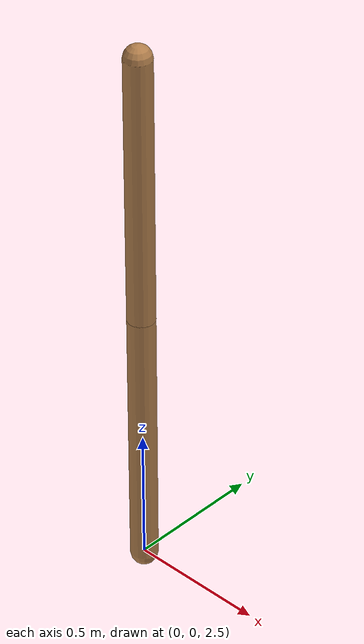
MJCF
<mujoco model="acrobot">
<compiler coordinate="local" inertiafromgeom="true"/>
 <asset>
    <texture name="grid" type="2d" builtin="checker" rgb1=".1 .2 .3" rgb2=".2 .3 .4" width="300" height="300" mark="edge" markrgb=".2 .3 .4"/>
    <material name="grid" texture="grid" texrepeat="1 1" texuniform="true" reflectance=".2"/>
    <material name="self" rgba=".7 .5 .3 1"/>
    <material name="self_default" rgba=".7 .5 .3 1"/>
    <material name="self_highlight" rgba="0 .5 .3 1"/>
    <material name="effector" rgba=".7 .4 .2 1"/>
    <material name="effector_default" rgba=".7 .4 .2 1"/>
    <material name="effector_highlight" rgba="0 .5 .3 1"/>
    <material name="decoration" rgba=".3 .5 .7 1"/>
    <material name="eye" rgba="0 .2 1 1"/>
    <material name="target" rgba=".6 .3 .3 1"/>
    <material name="target_default" rgba=".6 .3 .3 1"/>
    <material name="target_highlight" rgba=".6 .3 .3 .4"/>
    <material name="site" rgba=".5 .5 .5 .3"/>
    <texture name="skybox" type="skybox" builtin="gradient" rgb1=".4 .6 .8" rgb2="0 0 0"
               width="800" height="800" mark="random" markrgb="1 1 1"/>
  </asset>
   <visual>
    <headlight ambient=".4 .4 .4" diffuse=".8 .8 .8" specular="0.1 0.1 0.1"/>
    <map znear=".01"/>
    <quality shadowsize="2048"/>
  </visual>

  <default>
    <joint damping=".05"/>
    <geom type="capsule" mass="1"/>
  </default>

  <option timestep="0.01" integrator="RK4">
    <flag constraint="disable" energy="enable"/>
  </option>

  <worldbody>
    <geom name="floor" size="3 3 .2" type="plane"  material="grid"/>
    <body name="upper_arm" pos="0 0 2.5">
      <joint name="shoulder" type="hinge" axis="0 1 0"/>
      <geom name="upper_arm" fromto="0 0 0 0 0 1" size="0.05"  type="capsule" material="self"/>
      <body name="lower_arm" pos="0 0 1">
        <joint name="elbow" type="hinge" axis="0 1 0" />
        <geom name="lower_arm" fromto="0 0 0 0 0 1" size="0.05" type="capsule"  material="self"/>
        <site name="tip" pos="0 0 1" size="0.01"/>
      </body>
    </body>
  </worldbody>

   <actuator>
    <motor name="elbow" joint="elbow" gear="2" ctrllimited="true" ctrlrange="-1 1"/>
  </actuator>
</mujoco>
